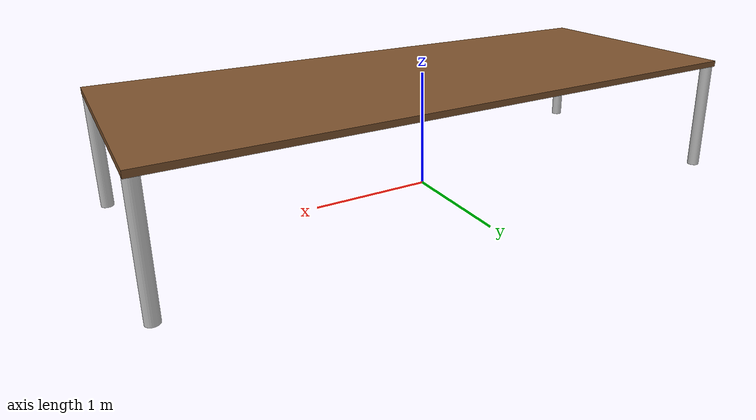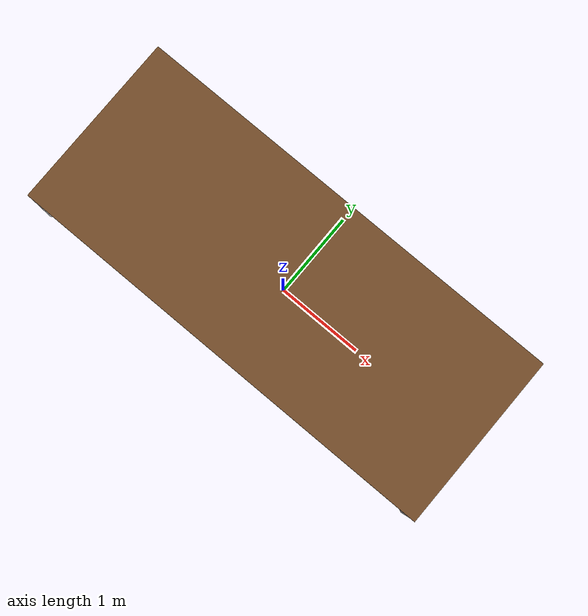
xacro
<?xml version="1.0" encoding="UTF-8"?>
<robot xmlns:xacro="http://wiki.ros.org/xacro" name="tableBot">

  <!-- copy and paste the contents of "rrbot_macro.xacro" here -->
  <xacro:include filename="materials.xacro" />
  <xacro:include filename="table_macro.xacro"/>

  <!-- create link fixed to the "world" -->
  <link name="world" />

  <!-- create the first robot -->
  <xacro:table prefix="table1_" parent="world">
    <!-- position robot in the world -->
    <origin xyz="0 0 1" rpy="0 0 0" />
  </xacro:table>

</robot>

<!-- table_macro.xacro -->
<robot xmlns:xacro="http://www.ros.org/wiki/xacro">

  <xacro:macro name="table" params="prefix parent *origin">

    <!-- Constants for robot dimensions -->
    <xacro:property name="table_length" value="5" />
    <xacro:property name="table_width" value="2" />
    <xacro:property name="table_height" value="1" />
    <xacro:property name="table_thickness" value="0.05" />
    <xacro:property name="leg_length" value="${table_height - table_thickness}" />
	<xacro:property name="leg_radius" value="0.05"/>

    <joint name="${prefix}base_joint" type="fixed">
      <xacro:insert_block name="origin" />
      <parent link="${parent}" />
      <child link="${prefix}top" />
    </joint>

    <!-- Top -->
    <link name="${prefix}top">
      <visual>
        <origin xyz="0 0 ${-1*(table_thickness/2)}" rpy="0 0 0" />
        <geometry>
          <box size="${table_length} ${table_width} ${table_thickness}" />
        </geometry>
        <material name="brown" />
      </visual>
    </link>

 <!-- joint from "${prefix}top" to "${prefix}leg1"-->
  <joint name="${prefix}leg_joint" type="fixed">
    <origin rpy="0 0 0" xyz="${(table_length)/2 - leg_radius} ${(table_width)/2 - leg_radius} ${-1*(table_thickness)}" />
    <parent link="${prefix}top" />
    <child link="${prefix}leg1" />
  </joint>

  <!-- Leg One -->
  <link name="${prefix}leg1">
    <visual>
      <origin rpy="0 0 0" xyz="0 0 ${-leg_length/2}" />
      <geometry>
        <cylinder radius="${leg_radius}" length="${leg_length}" />
      </geometry>
      <material name="light_grey" />
    </visual>
  </link>

  <!-- joint from "${prefix}top" to "${prefix}leg2"-->
  <joint name="${prefix}leg_joint2" type="fixed">
    <origin rpy="0 0 0" xyz="${-1*((table_length)/2 - leg_radius)}  ${(table_width)/2 - leg_radius} ${-1*(table_thickness)}" />
    <parent link="${prefix}top" />
    <child link="${prefix}leg2" />
  </joint>

  <!-- Leg Two -->
  <link name="${prefix}leg2">
    <visual>
      <origin rpy="0 0 0" xyz="0 0 ${-leg_length/2}" />
      <geometry>
        <cylinder radius="${leg_radius}" length="${leg_length}"/>
      </geometry>
      <material name="light_grey" />
    </visual>
  </link>

  <!-- joint from "${prefix}top" to "${prefix}leg2"-->
  <joint name="${prefix}leg_joint3" type="fixed">
    <origin rpy="0 0 0" xyz="${(table_length)/2 - leg_radius}  ${-1*((table_width)/2 - leg_radius)} ${-1*(table_thickness)}" />
    <parent link="${prefix}top" />
    <child link="${prefix}leg3" />
  </joint>

  <!-- Leg Three -->
  <link name="${prefix}leg3">
    <visual>
      <origin rpy="0 0 0" xyz="0 0 ${-leg_length/2}" />
      <geometry>
        <cylinder radius="${leg_radius}" length="${leg_length}" />
      </geometry>
      <material name="light_grey" />
    </visual>
  </link>

  <!-- joint from "${prefix}top" to "${prefix}leg4"-->
  <joint name="${prefix}leg_joint4" type="fixed">
    <origin rpy="0 0 0" xyz="${-1*((table_length)/2 - leg_radius)}  ${-1*((table_width)/2 - leg_radius)} ${-1*(table_thickness)}" />
    <parent link="${prefix}top" />
    <child link="${prefix}leg4" />
  </joint>

  <!-- Leg Four -->
  <link name="${prefix}leg4">
    <visual>
      <origin rpy="0 0 0" xyz="0 0 ${-leg_length/2}" />
      <geometry>
        <cylinder radius="${leg_radius}" length="${leg_length}" />
      </geometry>
      <material name="light_grey" />
    </visual>
  </link>

  </xacro:macro>

</robot>
